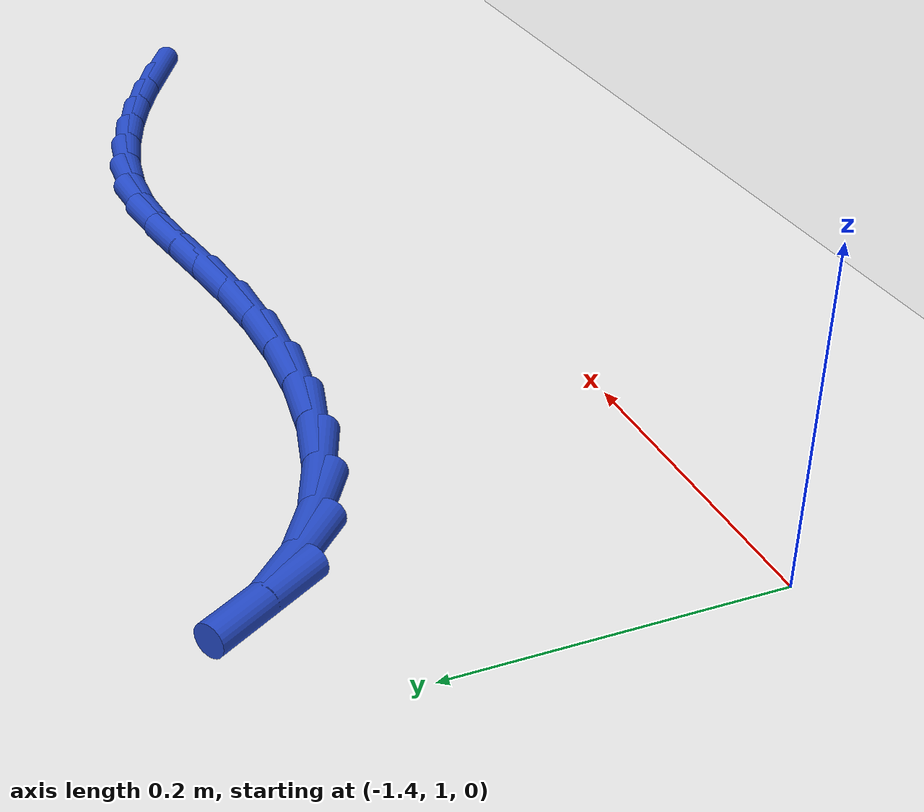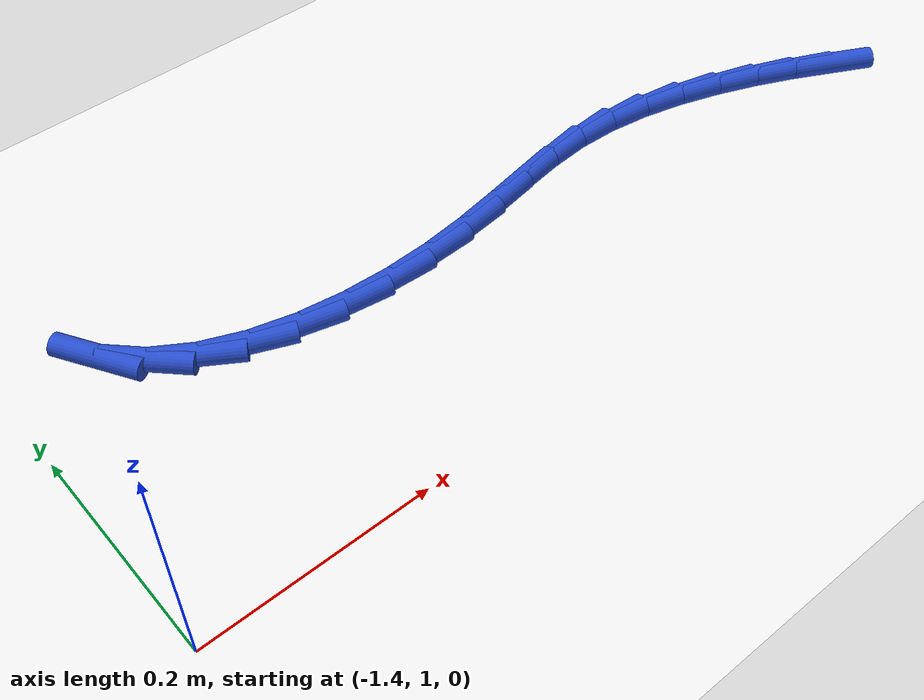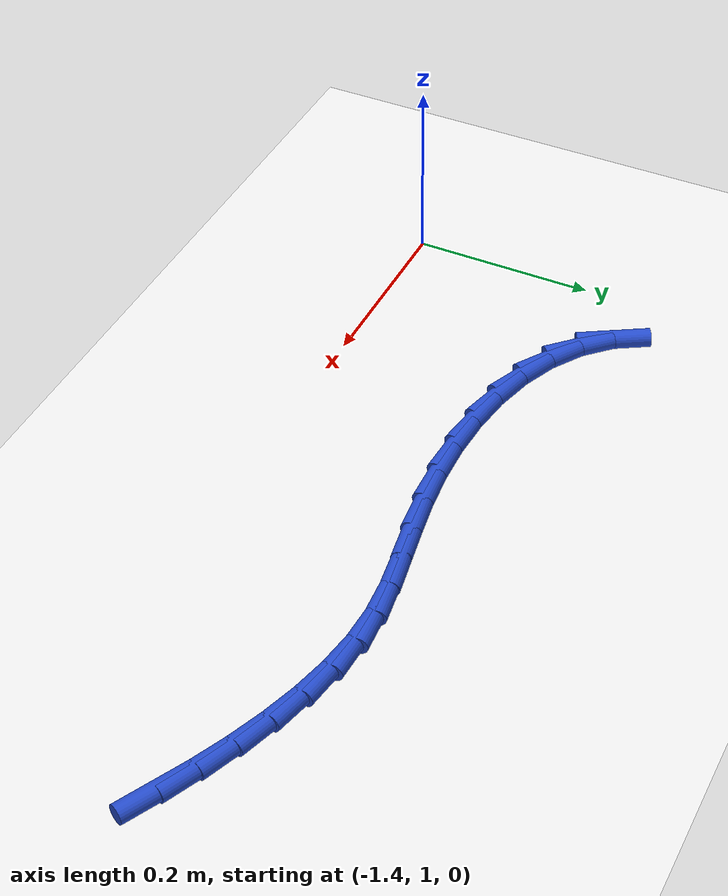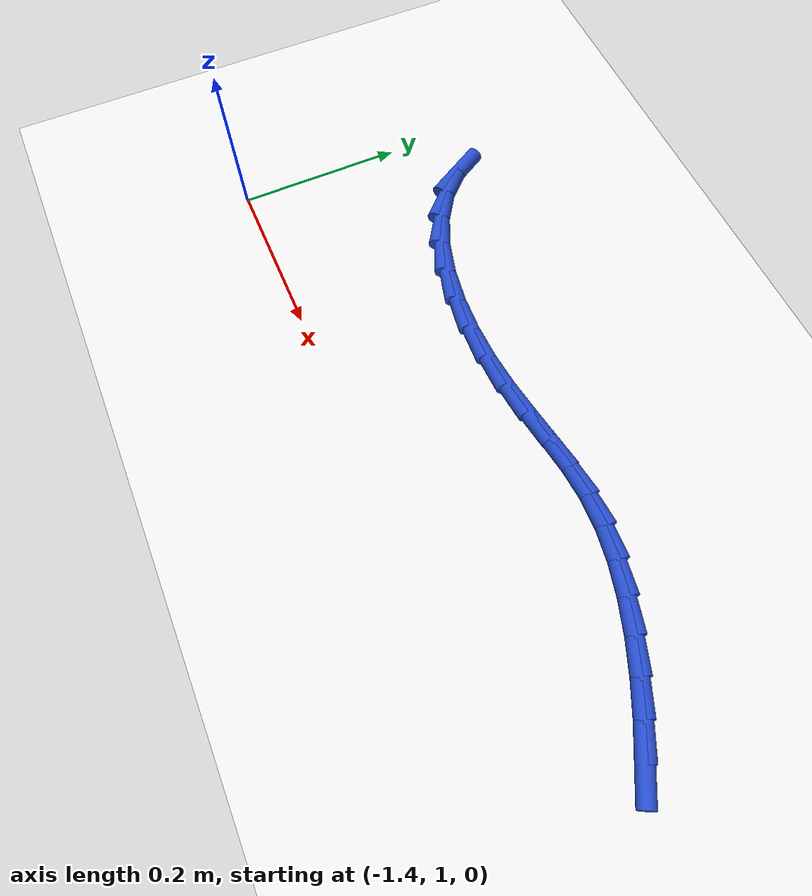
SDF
<sdf version="1.6">
 <world name="default">
  <model name="ground_plane">
   <static>1</static>
   <link name="link">
    <collision name="collision">
     <geometry><plane><normal>0 0 1</normal><size>100 100</size></plane></geometry>
     <surface><friction><ode><mu>100</mu><mu2>50</mu2></ode></friction></surface>
    </collision>
    <visual name="visual">
     <cast_shadows>0</cast_shadows>
     <geometry><plane><normal>0 0 1</normal><size>100 100</size></plane></geometry>
     <material>
      <script><uri>file://media/materials/scripts/gazebo.material</uri><name>Gazebo/WhiteGlow</name></script>
     </material>
    </visual>
   </link>
  </model>
  <model name="line">
   <link name="link_34">
    <pose>-0.602005927138487 1.1245134134581265 0.01 0 1.57 -0.4864410462582112</pose>
    <collision name="collision">
     <geometry><cylinder><radius>0.01</radius><length>0.08</length></cylinder></geometry>
    </collision>
    <visual name="visual">
     <material>
      <script><name>Gazebo/Blue</name><uri>file://media/materials/scripts/gazebo.material</uri></script>
     </material>
     <geometry><cylinder><radius>0.01</radius><length>0.08</length></cylinder></geometry>
    </visual>
   </link>
   <link name="link_35">
    <pose>-0.636870430861338 1.142950645188699 0.01 0 1.57 -0.4370330298851326</pose>
    <collision name="collision">
     <geometry><cylinder><radius>0.01</radius><length>0.08</length></cylinder></geometry>
    </collision>
    <visual name="visual">
     <material>
      <script><name>Gazebo/Blue</name><uri>file://media/materials/scripts/gazebo.material</uri></script>
     </material>
     <geometry><cylinder><radius>0.01</radius><length>0.08</length></cylinder></geometry>
    </visual>
   </link>
   <link name="link_36">
    <pose>-0.6727603907276547 1.1597170354433408 0.01 0 1.57 -0.38467385529505305</pose>
    <collision name="collision">
     <geometry><cylinder><radius>0.01</radius><length>0.08</length></cylinder></geometry>
    </collision>
    <visual name="visual">
     <material>
      <script><name>Gazebo/Blue</name><uri>file://media/materials/scripts/gazebo.material</uri></script>
     </material>
     <geometry><cylinder><radius>0.01</radius><length>0.08</length></cylinder></geometry>
    </visual>
   </link>
   <link name="link_37">
    <pose>-0.7096202934615161 1.1746394860055336 0.01 0 1.57 -0.32219894932615695</pose>
    <collision name="collision">
     <geometry><cylinder><radius>0.01</radius><length>0.08</length></cylinder></geometry>
    </collision>
    <visual name="visual">
     <material>
      <script><name>Gazebo/Blue</name><uri>file://media/materials/scripts/gazebo.material</uri></script>
     </material>
     <geometry><cylinder><radius>0.01</radius><length>0.08</length></cylinder></geometry>
    </visual>
   </link>
   <link name="link_38">
    <pose>-0.7471684251585913 1.1871742398043603 0.01 0 1.57 -0.24586596725841517</pose>
    <collision name="collision">
     <geometry><cylinder><radius>0.01</radius><length>0.08</length></cylinder></geometry>
    </collision>
    <visual name="visual">
     <material>
      <script><name>Gazebo/Blue</name><uri>file://media/materials/scripts/gazebo.material</uri></script>
     </material>
     <geometry><cylinder><radius>0.01</radius><length>0.08</length></cylinder></geometry>
    </visual>
   </link>
   <link name="link_39">
    <pose>-0.7850662520056675 1.196684433032282 0.01 0 1.57 -0.15307749985030616</pose>
    <collision name="collision">
     <geometry><cylinder><radius>0.01</radius><length>0.08</length></cylinder></geometry>
    </collision>
    <visual name="visual">
     <material>
      <script><name>Gazebo/Blue</name><uri>file://media/materials/scripts/gazebo.material</uri></script>
     </material>
     <geometry><cylinder><radius>0.01</radius><length>0.08</length></cylinder></geometry>
    </visual>
   </link>
   <link name="link_40">
    <pose>-0.8229752401893061 1.2025332018813897 0.01 0 1.57 -0.04130892806766804</pose>
    <collision name="collision">
     <geometry><cylinder><radius>0.01</radius><length>0.08</length></cylinder></geometry>
    </collision>
    <visual name="visual">
     <material>
      <script><name>Gazebo/Blue</name><uri>file://media/materials/scripts/gazebo.material</uri></script>
     </material>
     <geometry><cylinder><radius>0.01</radius><length>0.08</length></cylinder></geometry>
    </visual>
   </link>
   <link name="link_41">
    <pose>-0.8605581085588231 1.2040865935714296 0.01 0 1.57 0.073478094659854</pose>
    <collision name="collision">
     <geometry><cylinder><radius>0.01</radius><length>0.08</length></cylinder></geometry>
    </collision>
    <visual name="visual">
     <material>
      <script><name>Gazebo/Blue</name><uri>file://media/materials/scripts/gazebo.material</uri></script>
     </material>
     <geometry><cylinder><radius>0.01</radius><length>0.08</length></cylinder></geometry>
    </visual>
   </link>
   <link name="link_42">
    <pose>-0.89775214458735 1.2013487176050712 0.01 0 1.57 0.14855175083175318</pose>
    <collision name="collision">
     <geometry><cylinder><radius>0.01</radius><length>0.08</length></cylinder></geometry>
    </collision>
    <visual name="visual">
     <material>
      <script><name>Gazebo/Blue</name><uri>file://media/materials/scripts/gazebo.material</uri></script>
     </material>
     <geometry><cylinder><radius>0.01</radius><length>0.08</length></cylinder></geometry>
    </visual>
   </link>
   <link name="link_43">
    <pose>-0.9351117166173636 1.1957577003175448 0.01 0 1.57 0.17659292537964288</pose>
    <collision name="collision">
     <geometry><cylinder><radius>0.01</radius><length>0.08</length></cylinder></geometry>
    </collision>
    <visual name="visual">
     <material>
      <script><name>Gazebo/Blue</name><uri>file://media/materials/scripts/gazebo.material</uri></script>
     </material>
     <geometry><cylinder><radius>0.01</radius><length>0.08</length></cylinder></geometry>
    </visual>
   </link>
   <link name="link_44">
    <pose>-0.9732753871516355 1.1889473244791848 0.01 0 1.57 0.16010588954540345</pose>
    <collision name="collision">
     <geometry><cylinder><radius>0.01</radius><length>0.08</length></cylinder></geometry>
    </collision>
    <visual name="visual">
     <material>
      <script><name>Gazebo/Blue</name><uri>file://media/materials/scripts/gazebo.material</uri></script>
     </material>
     <geometry><cylinder><radius>0.01</radius><length>0.08</length></cylinder></geometry>
    </visual>
   </link>
   <link name="link_45">
    <pose>-1.0128817186929389 1.182551372860326 0.01 0 1.57 0.10472986271798332</pose>
    <collision name="collision">
     <geometry><cylinder><radius>0.01</radius><length>0.08</length></cylinder></geometry>
    </collision>
    <visual name="visual">
     <material>
      <script><name>Gazebo/Blue</name><uri>file://media/materials/scripts/gazebo.material</uri></script>
     </material>
     <geometry><cylinder><radius>0.01</radius><length>0.08</length></cylinder></geometry>
    </visual>
   </link>
   <link name="link_46">
    <pose>-1.0545206165256484 1.1781745228273068 0.01 0 1.57 0.03050445162533826</pose>
    <collision name="collision">
     <geometry><cylinder><radius>0.01</radius><length>0.08</length></cylinder></geometry>
    </collision>
    <visual name="visual">
     <material>
      <script><name>Gazebo/Blue</name><uri>file://media/materials/scripts/gazebo.material</uri></script>
     </material>
     <geometry><cylinder><radius>0.01</radius><length>0.08</length></cylinder></geometry>
    </visual>
   </link>
   <link name="link_47">
    <pose>-1.097831564921569 1.1768529361500482 0.01 0 1.57 -0.051427261396491196</pose>
    <collision name="collision">
     <geometry><cylinder><radius>0.01</radius><length>0.08</length></cylinder></geometry>
    </collision>
    <visual name="visual">
     <material>
      <script><name>Gazebo/Blue</name><uri>file://media/materials/scripts/gazebo.material</uri></script>
     </material>
     <geometry><cylinder><radius>0.01</radius><length>0.08</length></cylinder></geometry>
    </visual>
   </link>
   <link name="link_48">
    <pose>-1.1415888545327935 1.1791052396742412 0.01 0 1.57 -0.14624697940876588</pose>
    <collision name="collision">
     <geometry><cylinder><radius>0.01</radius><length>0.08</length></cylinder></geometry>
    </collision>
    <visual name="visual">
     <material>
      <script><name>Gazebo/Blue</name><uri>file://media/materials/scripts/gazebo.material</uri></script>
     </material>
     <geometry><cylinder><radius>0.01</radius><length>0.08</length></cylinder></geometry>
    </visual>
   </link>
   <link name="link_49">
    <pose>-1.1845352114513992 1.1854311791976786 0.01 0 1.57 -0.26056770459491707</pose>
    <collision name="collision">
     <geometry><cylinder><radius>0.01</radius><length>0.08</length></cylinder></geometry>
    </collision>
    <visual name="visual">
     <material>
      <script><name>Gazebo/Blue</name><uri>file://media/materials/scripts/gazebo.material</uri></script>
     </material>
     <geometry><cylinder><radius>0.01</radius><length>0.08</length></cylinder></geometry>
    </visual>
   </link>
   <link name="link_50">
    <pose>-1.2254133617694656 1.1963305005181528 0.01 0 1.57 -0.4021540027335433</pose>
    <collision name="collision">
     <geometry><cylinder><radius>0.01</radius><length>0.08</length></cylinder></geometry>
    </collision>
    <visual name="visual">
     <material>
      <script><name>Gazebo/Blue</name><uri>file://media/materials/scripts/gazebo.material</uri></script>
     </material>
     <geometry><cylinder><radius>0.01</radius><length>0.08</length></cylinder></geometry>
    </visual>
   </link>
   <link name="link_51">
    <pose>-1.2629660315790712 1.2123029494334576 0.01 0 1.57 -0.5788207469783011</pose>
    <collision name="collision">
     <geometry><cylinder><radius>0.01</radius><length>0.08</length></cylinder></geometry>
    </collision>
    <visual name="visual">
     <material>
      <script><name>Gazebo/Blue</name><uri>file://media/materials/scripts/gazebo.material</uri></script>
     </material>
     <geometry><cylinder><radius>0.01</radius><length>0.08</length></cylinder></geometry>
    </visual>
   </link>
   <link name="link_52">
    <pose>-1.295935946972294 1.2338482717413843 0.01 0 1.57 -0.7943125169757361</pose>
    <collision name="collision">
     <geometry><cylinder><radius>0.01</radius><length>0.08</length></cylinder></geometry>
    </collision>
    <visual name="visual">
     <material>
      <script><name>Gazebo/Blue</name><uri>file://media/materials/scripts/gazebo.material</uri></script>
     </material>
     <geometry><cylinder><radius>0.01</radius><length>0.08</length></cylinder></geometry>
    </visual>
   </link>
   <link name="link_53">
    <pose>-1.3230658340412136 1.2614662132397267 0.01 0 1.57 -1.0407984475117928</pose>
    <collision name="collision">
     <geometry><cylinder><radius>0.01</radius><length>0.08</length></cylinder></geometry>
    </collision>
    <visual name="visual">
     <material>
      <script><name>Gazebo/Blue</name><uri>file://media/materials/scripts/gazebo.material</uri></script>
     </material>
     <geometry><cylinder><radius>0.01</radius><length>0.08</length></cylinder></geometry>
    </visual>
   </link>
  </model>
 </world>
</sdf>
